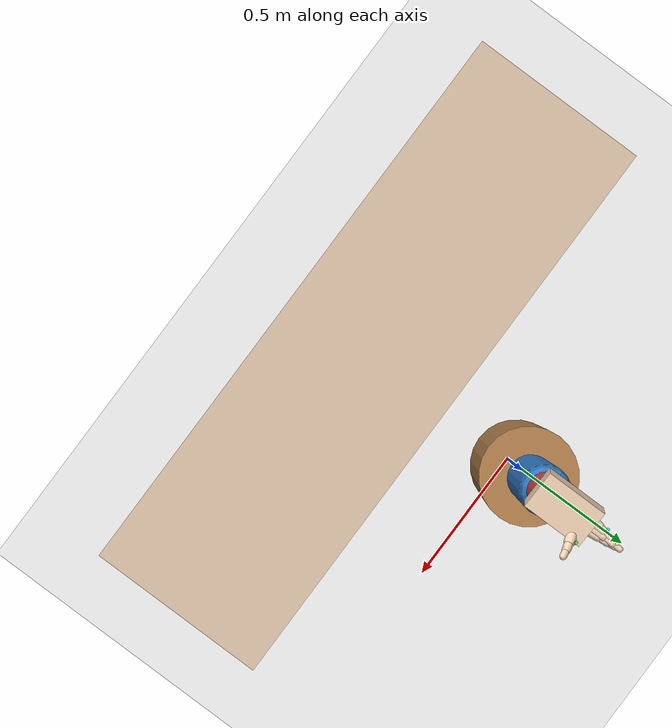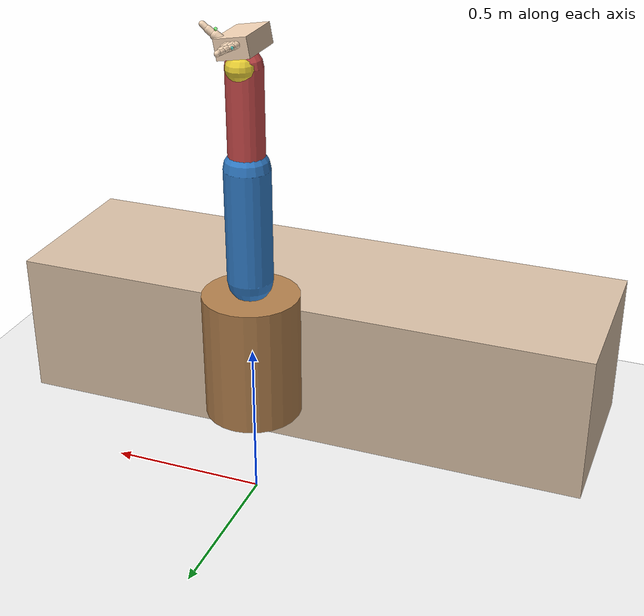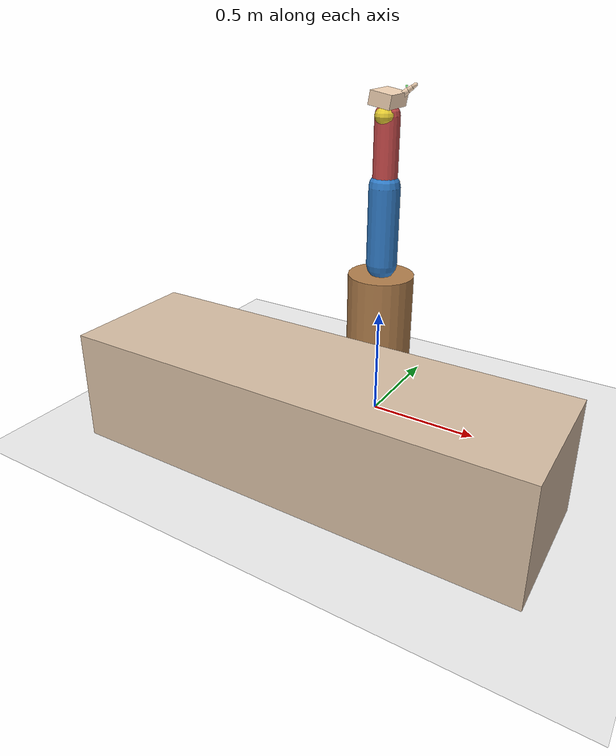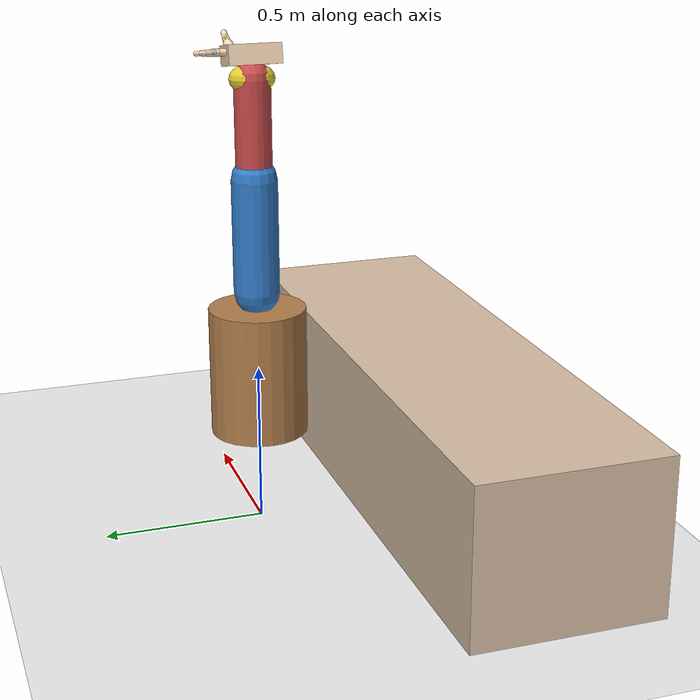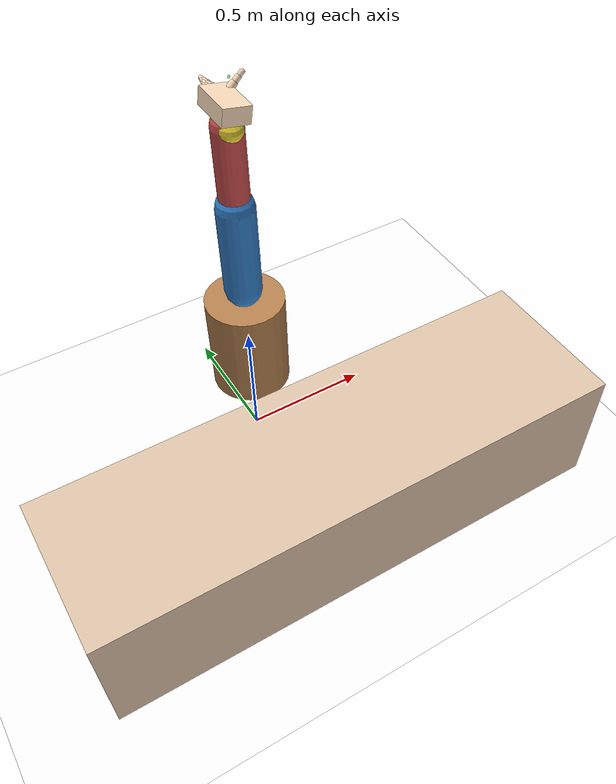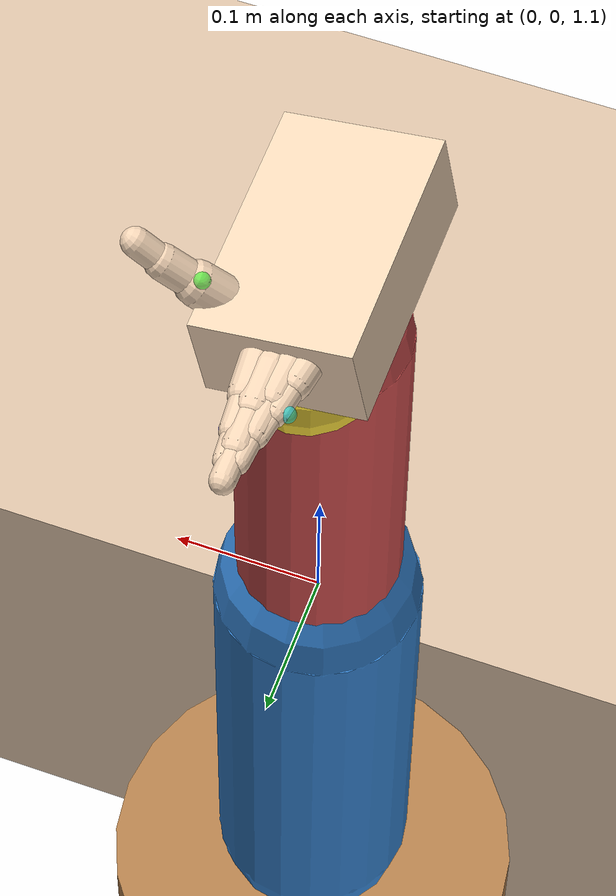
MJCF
<mujoco model="仿人机械臂 - 完整五指版">

  <!-- 优化仿真参数 -->
  <option timestep="0.005" gravity="0 0 -9.81" integrator="Euler"/>

  <!-- 物理求解器设置 -->
  <size nstack="5000"/>
  <option impratio="0.8" tolerance="0.0001" noslip_tolerance="0.0001"/>

  <worldbody>
    <!-- 环境 -->
    <light pos="0 1 3" dir="0 -0.3 -1" directional="true" castshadow="true"/>
    <light pos="-1 0 2" dir="0.5 0 -0.5" directional="true" castshadow="false"/>

    <!-- 地面 -->
    <geom name="ground" type="plane" size="3 3 0.1" friction="1.2 0.005 0.0001" rgba="0.95 0.95 0.95 1"/>

    <!-- 桌子 -->
    <geom name="table" type="box" pos="0 -0.6 0.25" size="1.0 0.3 0.25" rgba="0.85 0.75 0.65 1" friction="1.0 0.01 0.001"/>

    <!-- === 躯干基座 === -->
    <body name="torso" pos="0 0 0.5" quat="1 0 0 0">
      <geom type="cylinder" size="0.15 0.2" rgba="0.7 0.5 0.3 1" density="500"/>

      <!-- 固定基座，避免初始不稳定 -->
      <joint name="root_joint" type="free" damping="1.0"/>
      <!-- 可以注释掉free joint改为固定基座 -->

      <!-- === 上臂（3自由度球关节）=== -->
      <body name="upper_arm" pos="0 0 0.25" euler="0 0 0">
        <geom type="capsule" fromto="0 0 0 0 0 0.35" size="0.07" rgba="0.2 0.5 0.8 1" density="400"/>

        <!-- 肩部三轴关节 -->
        <joint name="shoulder_flexion" type="hinge" pos="0 0 0" axis="1 0 0" range="-80 80" stiffness="15" damping="3" armature="0.01"/>
        <joint name="shoulder_abduction" type="hinge" pos="0 0 0" axis="0 1 0" range="-60 60" stiffness="15" damping="3" armature="0.01"/>
        <joint name="shoulder_rotation" type="hinge" pos="0 0 0" axis="0 0 1" range="-50 50" stiffness="10" damping="2" armature="0.01"/>

        <!-- === 前臂 === -->
        <body name="forearm" pos="0 0 0.35">
          <geom type="capsule" fromto="0 0 0 0 0 0.30" size="0.055" rgba="0.8 0.3 0.3 1" density="300"/>
          <joint name="elbow" type="hinge" pos="0 0 0" axis="1 0 0" range="-120 0" stiffness="30" damping="6" armature="0.01"/>

          <!-- === 手腕（2自由度）=== -->
          <body name="wrist" pos="0 0 0.30">
            <geom type="ellipsoid" size="0.05 0.07 0.045" rgba="0.9 0.8 0.2 1" density="500"/>
            <joint name="wrist_flexion" type="hinge" pos="0 0 0" axis="1 0 0" range="-45 45" stiffness="20" damping="4" armature="0.01"/>
            <joint name="wrist_abduction" type="hinge" pos="0 0 0" axis="0 1 0" range="-30 30" stiffness="20" damping="4" armature="0.01"/>

            <!-- === 手掌 === -->
            <body name="palm" pos="0 0 0.07" euler="0 10 0">
              <!-- 手掌主体 -->
              <geom type="box" size="0.05 0.08 0.03" rgba="0.96 0.84 0.72 1" density="600"/>

              <!-- === 拇指（2关节）=== -->
              <body name="thumb_metacarpal" pos="0.035 0.05 0.015" euler="0 0 -20">
                <geom type="capsule" fromto="0 0 0 0.015 0.01 0.02" size="0.014" rgba="0.96 0.84 0.72 1" density="400"/>
                <joint name="thumb_cmc" type="hinge" axis="0 0 1" range="-15 45" stiffness="12" damping="2"/>

                <body name="thumb_proximal" pos="0.015 0.01 0.02">
                  <geom type="capsule" fromto="0 0 0 0.015 0.008 0.018" size="0.011" rgba="0.96 0.84 0.72 1" density="400"/>
                  <joint name="thumb_mcp" type="hinge" axis="0 1 0" range="0 80" stiffness="10" damping="2"/>

                  <body name="thumb_distal" pos="0.015 0.008 0.018">
                    <geom type="capsule" fromto="0 0 0 0.012 0.005 0.015" size="0.009" rgba="0.96 0.84 0.72 1" density="400"/>
                    <joint name="thumb_ip" type="hinge" axis="0 1 0" range="0 60" stiffness="8" damping="1.5"/>
                  </body>
                </body>
              </body>

              <!-- === 食指（3关节）=== -->
              <body name="index_metacarpal" pos="0.01 0.08 0.01" euler="0 0 5">
                <geom type="capsule" fromto="0 0 0 0 0.025 0" size="0.011" rgba="0.96 0.84 0.72 1" density="400"/>
                <joint name="index_mcp" type="hinge" axis="1 0 0" range="-10 90" stiffness="15" damping="2.5"/>

                <body name="index_proximal" pos="0 0.025 0">
                  <geom type="capsule" fromto="0 0 0 0 0.025 0" size="0.009" rgba="0.96 0.84 0.72 1" density="400"/>
                  <joint name="index_pip" type="hinge" axis="1 0 0" range="0 110" stiffness="12" damping="2"/>

                  <body name="index_distal" pos="0 0.025 0">
                    <geom type="capsule" fromto="0 0 0 0 0.02 0" size="0.007" rgba="0.96 0.84 0.72 1" density="400"/>
                    <joint name="index_dip" type="hinge" axis="1 0 0" range="0 80" stiffness="10" damping="1.5"/>
                  </body>
                </body>
              </body>

              <!-- === 中指（3关节）=== -->
              <body name="middle_metacarpal" pos="0.0 0.085 0.01" euler="0 0 0">
                <geom type="capsule" fromto="0 0 0 0 0.028 0" size="0.012" rgba="0.96 0.84 0.72 1" density="400"/>
                <joint name="middle_mcp" type="hinge" axis="1 0 0" range="-10 90" stiffness="15" damping="2.5"/>

                <body name="middle_proximal" pos="0 0.028 0">
                  <geom type="capsule" fromto="0 0 0 0 0.028 0" size="0.010" rgba="0.96 0.84 0.72 1" density="400"/>
                  <joint name="middle_pip" type="hinge" axis="1 0 0" range="0 110" stiffness="12" damping="2"/>

                  <body name="middle_distal" pos="0 0.028 0">
                    <geom type="capsule" fromto="0 0 0 0 0.022 0" size="0.008" rgba="0.96 0.84 0.72 1" density="400"/>
                    <joint name="middle_dip" type="hinge" axis="1 0 0" range="0 80" stiffness="10" damping="1.5"/>
                  </body>
                </body>
              </body>

              <!-- === 无名指（3关节）=== -->
              <body name="ring_metacarpal" pos="-0.01 0.08 0.01" euler="0 0 -5">
                <geom type="capsule" fromto="0 0 0 0 0.025 0" size="0.011" rgba="0.96 0.84 0.72 1" density="400"/>
                <joint name="ring_mcp" type="hinge" axis="1 0 0" range="-10 90" stiffness="15" damping="2.5"/>

                <body name="ring_proximal" pos="0 0.025 0">
                  <geom type="capsule" fromto="0 0 0 0 0.025 0" size="0.009" rgba="0.96 0.84 0.72 1" density="400"/>
                  <joint name="ring_pip" type="hinge" axis="1 0 0" range="0 110" stiffness="12" damping="2"/>

                  <body name="ring_distal" pos="0 0.025 0">
                    <geom type="capsule" fromto="0 0 0 0 0.02 0" size="0.007" rgba="0.96 0.84 0.72 1" density="400"/>
                    <joint name="ring_dip" type="hinge" axis="1 0 0" range="0 80" stiffness="10" damping="1.5"/>
                  </body>
                </body>
              </body>

              <!-- === 小指（3关节）=== -->
              <body name="pinky_metacarpal" pos="-0.02 0.07 0.01" euler="0 0 -10">
                <geom type="capsule" fromto="0 0 0 0 0.022 0" size="0.010" rgba="0.96 0.84 0.72 1" density="400"/>
                <joint name="pinky_mcp" type="hinge" axis="1 0 0" range="-10 90" stiffness="12" damping="2"/>

                <body name="pinky_proximal" pos="0 0.022 0">
                  <geom type="capsule" fromto="0 0 0 0 0.022 0" size="0.008" rgba="0.96 0.84 0.72 1" density="400"/>
                  <joint name="pinky_pip" type="hinge" axis="1 0 0" range="0 110" stiffness="10" damping="1.5"/>

                  <body name="pinky_distal" pos="0 0.022 0">
                    <geom type="capsule" fromto="0 0 0 0 0.018 0" size="0.006" rgba="0.96 0.84 0.72 1" density="400"/>
                    <joint name="pinky_dip" type="hinge" axis="1 0 0" range="0 80" stiffness="8" damping="1.2"/>
                  </body>
                </body>
              </body>

              <!-- 接触传感器站点 -->
              <site name="palm_center" pos="0 0.04 0" size="0.01" rgba="1 0 0 0.5"/>
              <site name="thumb_tip" pos="0.042 0.064 0.053" size="0.005" rgba="0 1 0 0.5"/>
              <site name="index_tip" pos="0.01 0.13 0.01" size="0.005" rgba="0 0 1 0.5"/>
              <site name="middle_tip" pos="0.0 0.135 0.01" size="0.005" rgba="1 1 0 0.5"/>
              <site name="ring_tip" pos="-0.01 0.125 0.01" size="0.005" rgba="1 0 1 0.5"/>
              <site name="pinky_tip" pos="-0.02 0.112 0.01" size="0.005" rgba="0 1 1 0.5"/>
            </body>
          </body>
        </body>
      </body>
    </body>
  </worldbody>

  <!-- === 执行器定义 === -->
  <actuator>
    <!-- 肩部执行器 -->
    <motor name="act_shoulder_flex" joint="shoulder_flexion" gear="40" ctrlrange="-1 1" ctrllimited="true"/>
    <motor name="act_shoulder_abd" joint="shoulder_abduction" gear="30" ctrlrange="-1 1" ctrllimited="true"/>
    <motor name="act_shoulder_rot" joint="shoulder_rotation" gear="20" ctrlrange="-1 1" ctrllimited="true"/>

    <!-- 肘部执行器 -->
    <motor name="act_elbow" joint="elbow" gear="60" ctrlrange="-1 0.3" ctrllimited="true"/>

    <!-- 腕部执行器 -->
    <motor name="act_wrist_flex" joint="wrist_flexion" gear="15" ctrlrange="-1 1" ctrllimited="true"/>
    <motor name="act_wrist_abd" joint="wrist_abduction" gear="12" ctrlrange="-1 1" ctrllimited="true"/>

    <!-- 拇指执行器 -->
    <motor name="act_thumb_cmc" joint="thumb_cmc" gear="8" ctrlrange="-0.5 1" ctrllimited="true"/>
    <motor name="act_thumb_mcp" joint="thumb_mcp" gear="6" ctrlrange="0 1" ctrllimited="true"/>
    <motor name="act_thumb_ip" joint="thumb_ip" gear="5" ctrlrange="0 1" ctrllimited="true"/>

    <!-- 食指执行器 -->
    <motor name="act_index_mcp" joint="index_mcp" gear="10" ctrlrange="-0.2 1" ctrllimited="true"/>
    <motor name="act_index_pip" joint="index_pip" gear="8" ctrlrange="0 1" ctrllimited="true"/>
    <motor name="act_index_dip" joint="index_dip" gear="6" ctrlrange="0 1" ctrllimited="true"/>

    <!-- 中指执行器 -->
    <motor name="act_middle_mcp" joint="middle_mcp" gear="10" ctrlrange="-0.2 1" ctrllimited="true"/>
    <motor name="act_middle_pip" joint="middle_pip" gear="8" ctrlrange="0 1" ctrllimited="true"/>
    <motor name="act_middle_dip" joint="middle_dip" gear="6" ctrlrange="0 1" ctrllimited="true"/>

    <!-- 无名指执行器 -->
    <motor name="act_ring_mcp" joint="ring_mcp" gear="9" ctrlrange="-0.2 1" ctrllimited="true"/>
    <motor name="act_ring_pip" joint="ring_pip" gear="7" ctrlrange="0 1" ctrllimited="true"/>
    <motor name="act_ring_dip" joint="ring_dip" gear="5" ctrlrange="0 1" ctrllimited="true"/>

    <!-- 小指执行器 -->
    <motor name="act_pinky_mcp" joint="pinky_mcp" gear="8" ctrlrange="-0.2 1" ctrllimited="true"/>
    <motor name="act_pinky_pip" joint="pinky_pip" gear="6" ctrlrange="0 1" ctrllimited="true"/>
    <motor name="act_pinky_dip" joint="pinky_dip" gear="4" ctrlrange="0 1" ctrllimited="true"/>
  </actuator>

  <!-- === 传感器定义 === -->
  <sensor>
    <!-- 关节位置传感器 -->
    <jointpos name="shoulder_pos" joint="shoulder_flexion"/>
    <jointpos name="elbow_pos" joint="elbow"/>
    <jointpos name="wrist_pos" joint="wrist_flexion"/>

    <!-- 接触传感器 -->
    <touch name="thumb_touch" site="thumb_tip"/>
    <touch name="index_touch" site="index_tip"/>
    <touch name="middle_touch" site="middle_tip"/>
    <touch name="ring_touch" site="ring_tip"/>
    <touch name="pinky_touch" site="pinky_tip"/>

    <!-- 力传感器 -->
    <force name="hand_force" site="palm_center"/>

  </sensor>
</mujoco>
